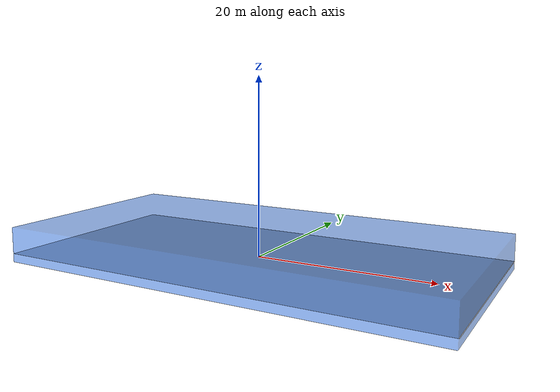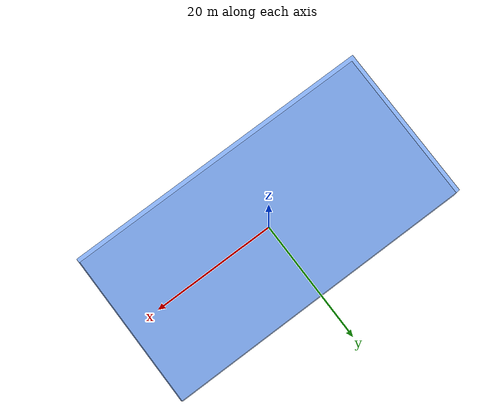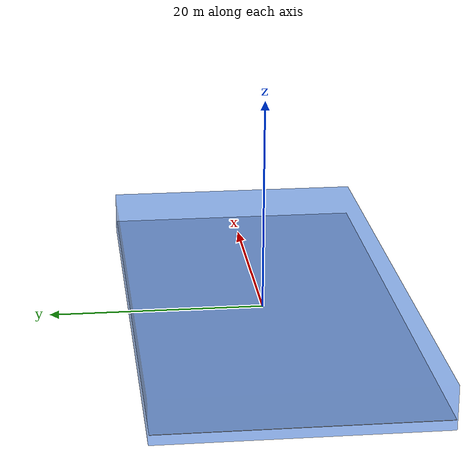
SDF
<?xml version="1.0" ?>
<sdf version="1.7">
  <model name="pool_ground">
    <static>true</static>

    <link name="link">
      <collision name="collision">
        <geometry>
          <plane>
            <normal>0 0 1</normal>
            <size>50 25</size>
          </plane>
        </geometry>
      </collision>
      <visual name="visual">
        <cast_shadows>false</cast_shadows>
        <geometry>
          <plane>
            <normal>0 0 1</normal>
            <size>50 25</size>
          </plane>
        </geometry>
      </visual>
    </link>

    <link name='water_visual'>
      <pose>0 0 1.0 0 0 0</pose> <visual name='water_surface'>
        <cast_shadows>false</cast_shadows>
        <geometry>
          <box>
            <size>49.85 25.15 4</size>
          </box>
        </geometry>
        <material>
          <ambient>0.1 0.3 0.8 0.5</ambient>
          <diffuse>0.1 0.4 0.9 0.5</diffuse>
        </material>
      </visual>
    </link>
  </model>
</sdf>
